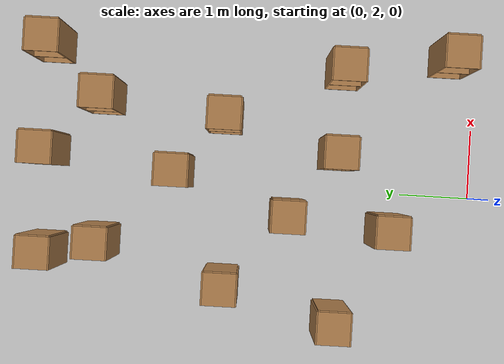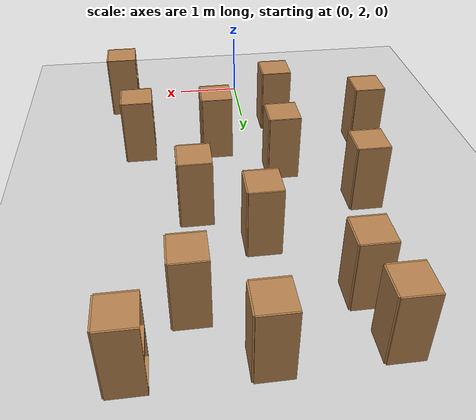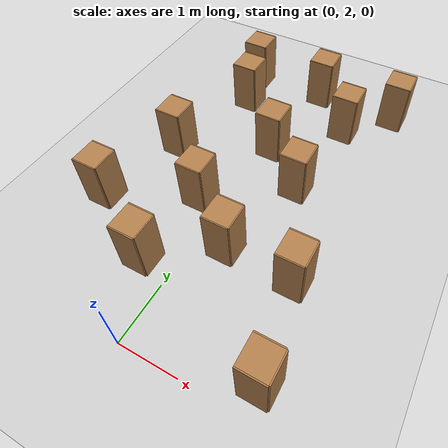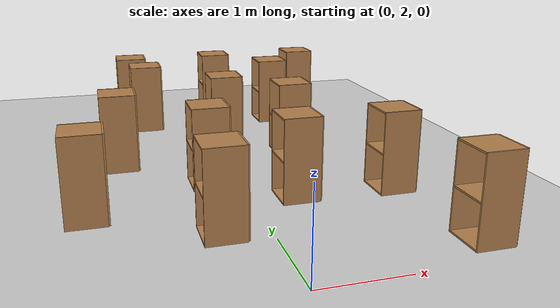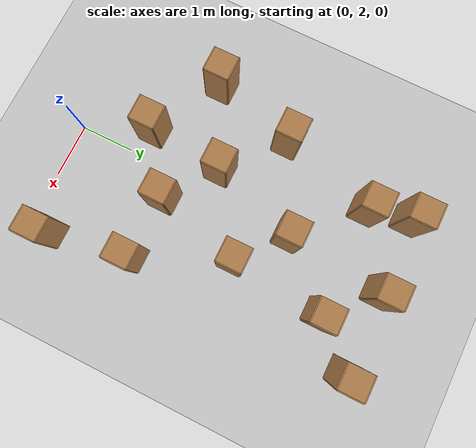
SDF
<sdf version="1.6">
 <world name="default">
  <model name="ground_plane">
   <static>1</static>
   <link name="link">
    <collision name="collision">
     <geometry><plane><normal>0 0 1</normal><size>100 100</size></plane></geometry>
     <surface><friction><ode><mu>100</mu><mu2>50</mu2></ode></friction></surface>
    </collision>
    <visual name="visual">
     <cast_shadows>0</cast_shadows>
     <geometry><plane><normal>0 0 1</normal><size>100 100</size></plane></geometry>
     <material>
      <script><uri>file://media/materials/scripts/gazebo.material</uri><name>Gazebo/Grey</name></script>
     </material>
    </visual>
   </link>
  </model>
  <model name="cabinet_39">
   <static>1</static>
   <link name="cabinet_bottom_plate">
    <inertial>
     <pose>0 0 -1 0 -0 0</pose>
     <inertia><ixx>2.05</ixx><ixy>0</ixy><ixz>0</ixz><iyy>2.05</iyy><iyz>0</iyz><izz>2.05</izz></inertia>
     <mass>25</mass>
    </inertial>
    <collision name="cabinet_bottom_plate_geom">
     <pose>0 0 0.01 0 -0 0</pose>
     <geometry><box><size>0.45 0.45 0.02</size></box></geometry>
    </collision>
    <visual name="cabinet_bottom_plate_geom_visual">
     <pose>0 0 0.01 0 -0 0</pose>
     <geometry><box><size>0.45 0.45 0.02</size></box></geometry>
     <material>
      <script><uri>file://media/materials/scripts/gazebo.material</uri><name>Gazebo/Wood</name></script>
     </material>
    </visual>
    <collision name="cabinet_bottom_plate_geom_cabinet_back_plate">
     <pose>0.235 0 0.51 0 -0 0</pose>
     <geometry><box><size>0.02 0.45 1.02</size></box></geometry>
    </collision>
    <visual name="cabinet_bottom_plate_geom_cabinet_back_plate_visual">
     <pose>0.235 0 0.51 0 -0 0</pose>
     <geometry><box><size>0.02 0.45 1.02</size></box></geometry>
     <material>
      <script><uri>file://media/materials/scripts/gazebo.material</uri><name>Gazebo/Wood</name></script>
     </material>
    </visual>
    <collision name="cabinet_bottom_plate_geom_cabinet_left_plate">
     <pose>0 0.235 0.51 0 -0 0</pose>
     <geometry><box><size>0.45 0.02 1.02</size></box></geometry>
    </collision>
    <visual name="cabinet_bottom_plate_geom_cabinet_left_plate_visual">
     <pose>0 0.235 0.51 0 -0 0</pose>
     <geometry><box><size>0.45 0.02 1.02</size></box></geometry>
     <material>
      <script><uri>file://media/materials/scripts/gazebo.material</uri><name>Gazebo/Wood</name></script>
     </material>
    </visual>
    <collision name="cabinet_bottom_plate_geom_cabinet_middle_plate">
     <pose>0 0 0.51 0 -0 0</pose>
     <geometry><box><size>0.45 0.45 0.02</size></box></geometry>
    </collision>
    <visual name="cabinet_bottom_plate_geom_cabinet_middle_plate_visual">
     <pose>0 0 0.51 0 -0 0</pose>
     <geometry><box><size>0.45 0.45 0.02</size></box></geometry>
     <material>
      <script><uri>file://media/materials/scripts/gazebo.material</uri><name>Gazebo/Wood</name></script>
     </material>
    </visual>
    <collision name="cabinet_bottom_plate_geom_cabinet_right_plate">
     <pose>0 -0.235 0.51 0 -0 0</pose>
     <geometry><box><size>0.45 0.02 1.02</size></box></geometry>
    </collision>
    <visual name="cabinet_bottom_plate_geom_cabinet_right_plate_visual">
     <pose>0 -0.235 0.51 0 -0 0</pose>
     <geometry><box><size>0.45 0.02 1.02</size></box></geometry>
     <material>
      <script><uri>file://media/materials/scripts/gazebo.material</uri><name>Gazebo/Wood</name></script>
     </material>
    </visual>
    <collision name="cabinet_bottom_plate_geom_cabinet_top_plate">
     <pose>0 0 1.01 0 -0 0</pose>
     <geometry><box><size>0.45 0.45 0.02</size></box></geometry>
    </collision>
    <visual name="cabinet_bottom_plate_geom_cabinet_top_plate_visual">
     <pose>0 0 1.01 0 -0 0</pose>
     <geometry><box><size>0.45 0.45 0.02</size></box></geometry>
     <material>
      <script><uri>file://media/materials/scripts/gazebo.material</uri><name>Gazebo/Wood</name></script>
     </material>
    </visual>
   </link>
   <pose>-1.04936 8.11468 0 0 -0 0</pose>
  </model>
  <model name="cabinet_40">
   <static>1</static>
   <link name="cabinet_bottom_plate">
    <inertial>
     <pose>0 0 -1 0 -0 0</pose>
     <inertia><ixx>2.05</ixx><ixy>0</ixy><ixz>0</ixz><iyy>2.05</iyy><iyz>0</iyz><izz>2.05</izz></inertia>
     <mass>25</mass>
    </inertial>
    <collision name="cabinet_bottom_plate_geom">
     <pose>0 0 0.01 0 -0 0</pose>
     <geometry><box><size>0.45 0.45 0.02</size></box></geometry>
    </collision>
    <visual name="cabinet_bottom_plate_geom_visual">
     <pose>0 0 0.01 0 -0 0</pose>
     <geometry><box><size>0.45 0.45 0.02</size></box></geometry>
     <material>
      <script><uri>file://media/materials/scripts/gazebo.material</uri><name>Gazebo/Wood</name></script>
     </material>
    </visual>
    <collision name="cabinet_bottom_plate_geom_cabinet_back_plate">
     <pose>0.235 0 0.51 0 -0 0</pose>
     <geometry><box><size>0.02 0.45 1.02</size></box></geometry>
    </collision>
    <visual name="cabinet_bottom_plate_geom_cabinet_back_plate_visual">
     <pose>0.235 0 0.51 0 -0 0</pose>
     <geometry><box><size>0.02 0.45 1.02</size></box></geometry>
     <material>
      <script><uri>file://media/materials/scripts/gazebo.material</uri><name>Gazebo/Wood</name></script>
     </material>
    </visual>
    <collision name="cabinet_bottom_plate_geom_cabinet_left_plate">
     <pose>0 0.235 0.51 0 -0 0</pose>
     <geometry><box><size>0.45 0.02 1.02</size></box></geometry>
    </collision>
    <visual name="cabinet_bottom_plate_geom_cabinet_left_plate_visual">
     <pose>0 0.235 0.51 0 -0 0</pose>
     <geometry><box><size>0.45 0.02 1.02</size></box></geometry>
     <material>
      <script><uri>file://media/materials/scripts/gazebo.material</uri><name>Gazebo/Wood</name></script>
     </material>
    </visual>
    <collision name="cabinet_bottom_plate_geom_cabinet_middle_plate">
     <pose>0 0 0.51 0 -0 0</pose>
     <geometry><box><size>0.45 0.45 0.02</size></box></geometry>
    </collision>
    <visual name="cabinet_bottom_plate_geom_cabinet_middle_plate_visual">
     <pose>0 0 0.51 0 -0 0</pose>
     <geometry><box><size>0.45 0.45 0.02</size></box></geometry>
     <material>
      <script><uri>file://media/materials/scripts/gazebo.material</uri><name>Gazebo/Wood</name></script>
     </material>
    </visual>
    <collision name="cabinet_bottom_plate_geom_cabinet_right_plate">
     <pose>0 -0.235 0.51 0 -0 0</pose>
     <geometry><box><size>0.45 0.02 1.02</size></box></geometry>
    </collision>
    <visual name="cabinet_bottom_plate_geom_cabinet_right_plate_visual">
     <pose>0 -0.235 0.51 0 -0 0</pose>
     <geometry><box><size>0.45 0.02 1.02</size></box></geometry>
     <material>
      <script><uri>file://media/materials/scripts/gazebo.material</uri><name>Gazebo/Wood</name></script>
     </material>
    </visual>
    <collision name="cabinet_bottom_plate_geom_cabinet_top_plate">
     <pose>0 0 1.01 0 -0 0</pose>
     <geometry><box><size>0.45 0.45 0.02</size></box></geometry>
    </collision>
    <visual name="cabinet_bottom_plate_geom_cabinet_top_plate_visual">
     <pose>0 0 1.01 0 -0 0</pose>
     <geometry><box><size>0.45 0.45 0.02</size></box></geometry>
     <material>
      <script><uri>file://media/materials/scripts/gazebo.material</uri><name>Gazebo/Wood</name></script>
     </material>
    </visual>
   </link>
   <pose>0.379703 8.15627 0 0 -0 0</pose>
  </model>
  <model name="cabinet_41">
   <static>1</static>
   <link name="cabinet_bottom_plate">
    <inertial>
     <pose>0 0 -1 0 -0 0</pose>
     <inertia><ixx>2.05</ixx><ixy>0</ixy><ixz>0</ixz><iyy>2.05</iyy><iyz>0</iyz><izz>2.05</izz></inertia>
     <mass>25</mass>
    </inertial>
    <collision name="cabinet_bottom_plate_geom">
     <pose>0 0 0.01 0 -0 0</pose>
     <geometry><box><size>0.45 0.45 0.02</size></box></geometry>
    </collision>
    <visual name="cabinet_bottom_plate_geom_visual">
     <pose>0 0 0.01 0 -0 0</pose>
     <geometry><box><size>0.45 0.45 0.02</size></box></geometry>
     <material>
      <script><uri>file://media/materials/scripts/gazebo.material</uri><name>Gazebo/Wood</name></script>
     </material>
    </visual>
    <collision name="cabinet_bottom_plate_geom_cabinet_back_plate">
     <pose>0.235 0 0.51 0 -0 0</pose>
     <geometry><box><size>0.02 0.45 1.02</size></box></geometry>
    </collision>
    <visual name="cabinet_bottom_plate_geom_cabinet_back_plate_visual">
     <pose>0.235 0 0.51 0 -0 0</pose>
     <geometry><box><size>0.02 0.45 1.02</size></box></geometry>
     <material>
      <script><uri>file://media/materials/scripts/gazebo.material</uri><name>Gazebo/Wood</name></script>
     </material>
    </visual>
    <collision name="cabinet_bottom_plate_geom_cabinet_left_plate">
     <pose>0 0.235 0.51 0 -0 0</pose>
     <geometry><box><size>0.45 0.02 1.02</size></box></geometry>
    </collision>
    <visual name="cabinet_bottom_plate_geom_cabinet_left_plate_visual">
     <pose>0 0.235 0.51 0 -0 0</pose>
     <geometry><box><size>0.45 0.02 1.02</size></box></geometry>
     <material>
      <script><uri>file://media/materials/scripts/gazebo.material</uri><name>Gazebo/Wood</name></script>
     </material>
    </visual>
    <collision name="cabinet_bottom_plate_geom_cabinet_middle_plate">
     <pose>0 0 0.51 0 -0 0</pose>
     <geometry><box><size>0.45 0.45 0.02</size></box></geometry>
    </collision>
    <visual name="cabinet_bottom_plate_geom_cabinet_middle_plate_visual">
     <pose>0 0 0.51 0 -0 0</pose>
     <geometry><box><size>0.45 0.45 0.02</size></box></geometry>
     <material>
      <script><uri>file://media/materials/scripts/gazebo.material</uri><name>Gazebo/Wood</name></script>
     </material>
    </visual>
    <collision name="cabinet_bottom_plate_geom_cabinet_right_plate">
     <pose>0 -0.235 0.51 0 -0 0</pose>
     <geometry><box><size>0.45 0.02 1.02</size></box></geometry>
    </collision>
    <visual name="cabinet_bottom_plate_geom_cabinet_right_plate_visual">
     <pose>0 -0.235 0.51 0 -0 0</pose>
     <geometry><box><size>0.45 0.02 1.02</size></box></geometry>
     <material>
      <script><uri>file://media/materials/scripts/gazebo.material</uri><name>Gazebo/Wood</name></script>
     </material>
    </visual>
    <collision name="cabinet_bottom_plate_geom_cabinet_top_plate">
     <pose>0 0 1.01 0 -0 0</pose>
     <geometry><box><size>0.45 0.45 0.02</size></box></geometry>
    </collision>
    <visual name="cabinet_bottom_plate_geom_cabinet_top_plate_visual">
     <pose>0 0 1.01 0 -0 0</pose>
     <geometry><box><size>0.45 0.45 0.02</size></box></geometry>
     <material>
      <script><uri>file://media/materials/scripts/gazebo.material</uri><name>Gazebo/Wood</name></script>
     </material>
    </visual>
   </link>
   <pose>1.89834 8.14689 0 0 -0 0</pose>
  </model>
  <model name="cabinet_51">
   <static>1</static>
   <link name="cabinet_bottom_plate">
    <inertial>
     <pose>0 0 -1 0 -0 0</pose>
     <inertia><ixx>2.05</ixx><ixy>0</ixy><ixz>0</ixz><iyy>2.05</iyy><iyz>0</iyz><izz>2.05</izz></inertia>
     <mass>25</mass>
    </inertial>
    <collision name="cabinet_bottom_plate_geom">
     <pose>0 0 0.01 0 -0 0</pose>
     <geometry><box><size>0.45 0.45 0.02</size></box></geometry>
    </collision>
    <visual name="cabinet_bottom_plate_geom_visual">
     <pose>0 0 0.01 0 -0 0</pose>
     <geometry><box><size>0.45 0.45 0.02</size></box></geometry>
     <material>
      <script><uri>file://media/materials/scripts/gazebo.material</uri><name>Gazebo/Wood</name></script>
     </material>
    </visual>
    <collision name="cabinet_bottom_plate_geom_cabinet_back_plate">
     <pose>0.235 0 0.51 0 -0 0</pose>
     <geometry><box><size>0.02 0.45 1.02</size></box></geometry>
    </collision>
    <visual name="cabinet_bottom_plate_geom_cabinet_back_plate_visual">
     <pose>0.235 0 0.51 0 -0 0</pose>
     <geometry><box><size>0.02 0.45 1.02</size></box></geometry>
     <material>
      <script><uri>file://media/materials/scripts/gazebo.material</uri><name>Gazebo/Wood</name></script>
     </material>
    </visual>
    <collision name="cabinet_bottom_plate_geom_cabinet_left_plate">
     <pose>0 0.235 0.51 0 -0 0</pose>
     <geometry><box><size>0.45 0.02 1.02</size></box></geometry>
    </collision>
    <visual name="cabinet_bottom_plate_geom_cabinet_left_plate_visual">
     <pose>0 0.235 0.51 0 -0 0</pose>
     <geometry><box><size>0.45 0.02 1.02</size></box></geometry>
     <material>
      <script><uri>file://media/materials/scripts/gazebo.material</uri><name>Gazebo/Wood</name></script>
     </material>
    </visual>
    <collision name="cabinet_bottom_plate_geom_cabinet_middle_plate">
     <pose>0 0 0.51 0 -0 0</pose>
     <geometry><box><size>0.45 0.45 0.02</size></box></geometry>
    </collision>
    <visual name="cabinet_bottom_plate_geom_cabinet_middle_plate_visual">
     <pose>0 0 0.51 0 -0 0</pose>
     <geometry><box><size>0.45 0.45 0.02</size></box></geometry>
     <material>
      <script><uri>file://media/materials/scripts/gazebo.material</uri><name>Gazebo/Wood</name></script>
     </material>
    </visual>
    <collision name="cabinet_bottom_plate_geom_cabinet_right_plate">
     <pose>0 -0.235 0.51 0 -0 0</pose>
     <geometry><box><size>0.45 0.02 1.02</size></box></geometry>
    </collision>
    <visual name="cabinet_bottom_plate_geom_cabinet_right_plate_visual">
     <pose>0 -0.235 0.51 0 -0 0</pose>
     <geometry><box><size>0.45 0.02 1.02</size></box></geometry>
     <material>
      <script><uri>file://media/materials/scripts/gazebo.material</uri><name>Gazebo/Wood</name></script>
     </material>
    </visual>
    <collision name="cabinet_bottom_plate_geom_cabinet_top_plate">
     <pose>0 0 1.01 0 -0 0</pose>
     <geometry><box><size>0.45 0.45 0.02</size></box></geometry>
    </collision>
    <visual name="cabinet_bottom_plate_geom_cabinet_top_plate_visual">
     <pose>0 0 1.01 0 -0 0</pose>
     <geometry><box><size>0.45 0.45 0.02</size></box></geometry>
     <material>
      <script><uri>file://media/materials/scripts/gazebo.material</uri><name>Gazebo/Wood</name></script>
     </material>
    </visual>
   </link>
   <pose>-0.880454 7.34516 0 0 -0 0</pose>
  </model>
  <model name="cabinet_52">
   <static>1</static>
   <link name="cabinet_bottom_plate">
    <inertial>
     <pose>0 0 -1 0 -0 0</pose>
     <inertia><ixx>2.05</ixx><ixy>0</ixy><ixz>0</ixz><iyy>2.05</iyy><iyz>0</iyz><izz>2.05</izz></inertia>
     <mass>25</mass>
    </inertial>
    <collision name="cabinet_bottom_plate_geom">
     <pose>0 0 0.01 0 -0 0</pose>
     <geometry><box><size>0.45 0.45 0.02</size></box></geometry>
    </collision>
    <visual name="cabinet_bottom_plate_geom_visual">
     <pose>0 0 0.01 0 -0 0</pose>
     <geometry><box><size>0.45 0.45 0.02</size></box></geometry>
     <material>
      <script><uri>file://media/materials/scripts/gazebo.material</uri><name>Gazebo/Wood</name></script>
     </material>
    </visual>
    <collision name="cabinet_bottom_plate_geom_cabinet_back_plate">
     <pose>0.235 0 0.51 0 -0 0</pose>
     <geometry><box><size>0.02 0.45 1.02</size></box></geometry>
    </collision>
    <visual name="cabinet_bottom_plate_geom_cabinet_back_plate_visual">
     <pose>0.235 0 0.51 0 -0 0</pose>
     <geometry><box><size>0.02 0.45 1.02</size></box></geometry>
     <material>
      <script><uri>file://media/materials/scripts/gazebo.material</uri><name>Gazebo/Wood</name></script>
     </material>
    </visual>
    <collision name="cabinet_bottom_plate_geom_cabinet_left_plate">
     <pose>0 0.235 0.51 0 -0 0</pose>
     <geometry><box><size>0.45 0.02 1.02</size></box></geometry>
    </collision>
    <visual name="cabinet_bottom_plate_geom_cabinet_left_plate_visual">
     <pose>0 0.235 0.51 0 -0 0</pose>
     <geometry><box><size>0.45 0.02 1.02</size></box></geometry>
     <material>
      <script><uri>file://media/materials/scripts/gazebo.material</uri><name>Gazebo/Wood</name></script>
     </material>
    </visual>
    <collision name="cabinet_bottom_plate_geom_cabinet_middle_plate">
     <pose>0 0 0.51 0 -0 0</pose>
     <geometry><box><size>0.45 0.45 0.02</size></box></geometry>
    </collision>
    <visual name="cabinet_bottom_plate_geom_cabinet_middle_plate_visual">
     <pose>0 0 0.51 0 -0 0</pose>
     <geometry><box><size>0.45 0.45 0.02</size></box></geometry>
     <material>
      <script><uri>file://media/materials/scripts/gazebo.material</uri><name>Gazebo/Wood</name></script>
     </material>
    </visual>
    <collision name="cabinet_bottom_plate_geom_cabinet_right_plate">
     <pose>0 -0.235 0.51 0 -0 0</pose>
     <geometry><box><size>0.45 0.02 1.02</size></box></geometry>
    </collision>
    <visual name="cabinet_bottom_plate_geom_cabinet_right_plate_visual">
     <pose>0 -0.235 0.51 0 -0 0</pose>
     <geometry><box><size>0.45 0.02 1.02</size></box></geometry>
     <material>
      <script><uri>file://media/materials/scripts/gazebo.material</uri><name>Gazebo/Wood</name></script>
     </material>
    </visual>
    <collision name="cabinet_bottom_plate_geom_cabinet_top_plate">
     <pose>0 0 1.01 0 -0 0</pose>
     <geometry><box><size>0.45 0.45 0.02</size></box></geometry>
    </collision>
    <visual name="cabinet_bottom_plate_geom_cabinet_top_plate_visual">
     <pose>0 0 1.01 0 -0 0</pose>
     <geometry><box><size>0.45 0.45 0.02</size></box></geometry>
     <material>
      <script><uri>file://media/materials/scripts/gazebo.material</uri><name>Gazebo/Wood</name></script>
     </material>
    </visual>
   </link>
   <pose>0.172309 6.30428 0 0 -0 0</pose>
  </model>
  <model name="cabinet_53">
   <static>1</static>
   <link name="cabinet_bottom_plate">
    <inertial>
     <pose>0 0 -1 0 -0 0</pose>
     <inertia><ixx>2.05</ixx><ixy>0</ixy><ixz>0</ixz><iyy>2.05</iyy><iyz>0</iyz><izz>2.05</izz></inertia>
     <mass>25</mass>
    </inertial>
    <collision name="cabinet_bottom_plate_geom">
     <pose>0 0 0.01 0 -0 0</pose>
     <geometry><box><size>0.45 0.45 0.02</size></box></geometry>
    </collision>
    <visual name="cabinet_bottom_plate_geom_visual">
     <pose>0 0 0.01 0 -0 0</pose>
     <geometry><box><size>0.45 0.45 0.02</size></box></geometry>
     <material>
      <script><uri>file://media/materials/scripts/gazebo.material</uri><name>Gazebo/Wood</name></script>
     </material>
    </visual>
    <collision name="cabinet_bottom_plate_geom_cabinet_back_plate">
     <pose>0.235 0 0.51 0 -0 0</pose>
     <geometry><box><size>0.02 0.45 1.02</size></box></geometry>
    </collision>
    <visual name="cabinet_bottom_plate_geom_cabinet_back_plate_visual">
     <pose>0.235 0 0.51 0 -0 0</pose>
     <geometry><box><size>0.02 0.45 1.02</size></box></geometry>
     <material>
      <script><uri>file://media/materials/scripts/gazebo.material</uri><name>Gazebo/Wood</name></script>
     </material>
    </visual>
    <collision name="cabinet_bottom_plate_geom_cabinet_left_plate">
     <pose>0 0.235 0.51 0 -0 0</pose>
     <geometry><box><size>0.45 0.02 1.02</size></box></geometry>
    </collision>
    <visual name="cabinet_bottom_plate_geom_cabinet_left_plate_visual">
     <pose>0 0.235 0.51 0 -0 0</pose>
     <geometry><box><size>0.45 0.02 1.02</size></box></geometry>
     <material>
      <script><uri>file://media/materials/scripts/gazebo.material</uri><name>Gazebo/Wood</name></script>
     </material>
    </visual>
    <collision name="cabinet_bottom_plate_geom_cabinet_middle_plate">
     <pose>0 0 0.51 0 -0 0</pose>
     <geometry><box><size>0.45 0.45 0.02</size></box></geometry>
    </collision>
    <visual name="cabinet_bottom_plate_geom_cabinet_middle_plate_visual">
     <pose>0 0 0.51 0 -0 0</pose>
     <geometry><box><size>0.45 0.45 0.02</size></box></geometry>
     <material>
      <script><uri>file://media/materials/scripts/gazebo.material</uri><name>Gazebo/Wood</name></script>
     </material>
    </visual>
    <collision name="cabinet_bottom_plate_geom_cabinet_right_plate">
     <pose>0 -0.235 0.51 0 -0 0</pose>
     <geometry><box><size>0.45 0.02 1.02</size></box></geometry>
    </collision>
    <visual name="cabinet_bottom_plate_geom_cabinet_right_plate_visual">
     <pose>0 -0.235 0.51 0 -0 0</pose>
     <geometry><box><size>0.45 0.02 1.02</size></box></geometry>
     <material>
      <script><uri>file://media/materials/scripts/gazebo.material</uri><name>Gazebo/Wood</name></script>
     </material>
    </visual>
    <collision name="cabinet_bottom_plate_geom_cabinet_top_plate">
     <pose>0 0 1.01 0 -0 0</pose>
     <geometry><box><size>0.45 0.45 0.02</size></box></geometry>
    </collision>
    <visual name="cabinet_bottom_plate_geom_cabinet_top_plate_visual">
     <pose>0 0 1.01 0 -0 0</pose>
     <geometry><box><size>0.45 0.45 0.02</size></box></geometry>
     <material>
      <script><uri>file://media/materials/scripts/gazebo.material</uri><name>Gazebo/Wood</name></script>
     </material>
    </visual>
   </link>
   <pose>1.17437 7.36677 0 0 -0 0</pose>
  </model>
  <model name="cabinet_64">
   <static>1</static>
   <link name="cabinet_bottom_plate">
    <inertial>
     <pose>0 0 -1 0 -0 0</pose>
     <inertia><ixx>2.05</ixx><ixy>0</ixy><ixz>0</ixz><iyy>2.05</iyy><iyz>0</iyz><izz>2.05</izz></inertia>
     <mass>25</mass>
    </inertial>
    <collision name="cabinet_bottom_plate_geom">
     <pose>0 0 0.01 0 -0 0</pose>
     <geometry><box><size>0.45 0.45 0.02</size></box></geometry>
    </collision>
    <visual name="cabinet_bottom_plate_geom_visual">
     <pose>0 0 0.01 0 -0 0</pose>
     <geometry><box><size>0.45 0.45 0.02</size></box></geometry>
     <material>
      <script><uri>file://media/materials/scripts/gazebo.material</uri><name>Gazebo/Wood</name></script>
     </material>
    </visual>
    <collision name="cabinet_bottom_plate_geom_cabinet_back_plate">
     <pose>0.235 0 0.51 0 -0 0</pose>
     <geometry><box><size>0.02 0.45 1.02</size></box></geometry>
    </collision>
    <visual name="cabinet_bottom_plate_geom_cabinet_back_plate_visual">
     <pose>0.235 0 0.51 0 -0 0</pose>
     <geometry><box><size>0.02 0.45 1.02</size></box></geometry>
     <material>
      <script><uri>file://media/materials/scripts/gazebo.material</uri><name>Gazebo/Wood</name></script>
     </material>
    </visual>
    <collision name="cabinet_bottom_plate_geom_cabinet_left_plate">
     <pose>0 0.235 0.51 0 -0 0</pose>
     <geometry><box><size>0.45 0.02 1.02</size></box></geometry>
    </collision>
    <visual name="cabinet_bottom_plate_geom_cabinet_left_plate_visual">
     <pose>0 0.235 0.51 0 -0 0</pose>
     <geometry><box><size>0.45 0.02 1.02</size></box></geometry>
     <material>
      <script><uri>file://media/materials/scripts/gazebo.material</uri><name>Gazebo/Wood</name></script>
     </material>
    </visual>
    <collision name="cabinet_bottom_plate_geom_cabinet_middle_plate">
     <pose>0 0 0.51 0 -0 0</pose>
     <geometry><box><size>0.45 0.45 0.02</size></box></geometry>
    </collision>
    <visual name="cabinet_bottom_plate_geom_cabinet_middle_plate_visual">
     <pose>0 0 0.51 0 -0 0</pose>
     <geometry><box><size>0.45 0.45 0.02</size></box></geometry>
     <material>
      <script><uri>file://media/materials/scripts/gazebo.material</uri><name>Gazebo/Wood</name></script>
     </material>
    </visual>
    <collision name="cabinet_bottom_plate_geom_cabinet_right_plate">
     <pose>0 -0.235 0.51 0 -0 0</pose>
     <geometry><box><size>0.45 0.02 1.02</size></box></geometry>
    </collision>
    <visual name="cabinet_bottom_plate_geom_cabinet_right_plate_visual">
     <pose>0 -0.235 0.51 0 -0 0</pose>
     <geometry><box><size>0.45 0.02 1.02</size></box></geometry>
     <material>
      <script><uri>file://media/materials/scripts/gazebo.material</uri><name>Gazebo/Wood</name></script>
     </material>
    </visual>
    <collision name="cabinet_bottom_plate_geom_cabinet_top_plate">
     <pose>0 0 1.01 0 -0 0</pose>
     <geometry><box><size>0.45 0.45 0.02</size></box></geometry>
    </collision>
    <visual name="cabinet_bottom_plate_geom_cabinet_top_plate_visual">
     <pose>0 0 1.01 0 -0 0</pose>
     <geometry><box><size>0.45 0.45 0.02</size></box></geometry>
     <material>
      <script><uri>file://media/materials/scripts/gazebo.material</uri><name>Gazebo/Wood</name></script>
     </material>
    </visual>
   </link>
   <pose>-1.4062 5.56121 0 0 -0 0</pose>
  </model>
  <model name="cabinet_65">
   <static>1</static>
   <link name="cabinet_bottom_plate">
    <inertial>
     <pose>0 0 -1 0 -0 0</pose>
     <inertia><ixx>2.05</ixx><ixy>0</ixy><ixz>0</ixz><iyy>2.05</iyy><iyz>0</iyz><izz>2.05</izz></inertia>
     <mass>25</mass>
    </inertial>
    <collision name="cabinet_bottom_plate_geom">
     <pose>0 0 0.01 0 -0 0</pose>
     <geometry><box><size>0.45 0.45 0.02</size></box></geometry>
    </collision>
    <visual name="cabinet_bottom_plate_geom_visual">
     <pose>0 0 0.01 0 -0 0</pose>
     <geometry><box><size>0.45 0.45 0.02</size></box></geometry>
     <material>
      <script><uri>file://media/materials/scripts/gazebo.material</uri><name>Gazebo/Wood</name></script>
     </material>
    </visual>
    <collision name="cabinet_bottom_plate_geom_cabinet_back_plate">
     <pose>0.235 0 0.51 0 -0 0</pose>
     <geometry><box><size>0.02 0.45 1.02</size></box></geometry>
    </collision>
    <visual name="cabinet_bottom_plate_geom_cabinet_back_plate_visual">
     <pose>0.235 0 0.51 0 -0 0</pose>
     <geometry><box><size>0.02 0.45 1.02</size></box></geometry>
     <material>
      <script><uri>file://media/materials/scripts/gazebo.material</uri><name>Gazebo/Wood</name></script>
     </material>
    </visual>
    <collision name="cabinet_bottom_plate_geom_cabinet_left_plate">
     <pose>0 0.235 0.51 0 -0 0</pose>
     <geometry><box><size>0.45 0.02 1.02</size></box></geometry>
    </collision>
    <visual name="cabinet_bottom_plate_geom_cabinet_left_plate_visual">
     <pose>0 0.235 0.51 0 -0 0</pose>
     <geometry><box><size>0.45 0.02 1.02</size></box></geometry>
     <material>
      <script><uri>file://media/materials/scripts/gazebo.material</uri><name>Gazebo/Wood</name></script>
     </material>
    </visual>
    <collision name="cabinet_bottom_plate_geom_cabinet_middle_plate">
     <pose>0 0 0.51 0 -0 0</pose>
     <geometry><box><size>0.45 0.45 0.02</size></box></geometry>
    </collision>
    <visual name="cabinet_bottom_plate_geom_cabinet_middle_plate_visual">
     <pose>0 0 0.51 0 -0 0</pose>
     <geometry><box><size>0.45 0.45 0.02</size></box></geometry>
     <material>
      <script><uri>file://media/materials/scripts/gazebo.material</uri><name>Gazebo/Wood</name></script>
     </material>
    </visual>
    <collision name="cabinet_bottom_plate_geom_cabinet_right_plate">
     <pose>0 -0.235 0.51 0 -0 0</pose>
     <geometry><box><size>0.45 0.02 1.02</size></box></geometry>
    </collision>
    <visual name="cabinet_bottom_plate_geom_cabinet_right_plate_visual">
     <pose>0 -0.235 0.51 0 -0 0</pose>
     <geometry><box><size>0.45 0.02 1.02</size></box></geometry>
     <material>
      <script><uri>file://media/materials/scripts/gazebo.material</uri><name>Gazebo/Wood</name></script>
     </material>
    </visual>
    <collision name="cabinet_bottom_plate_geom_cabinet_top_plate">
     <pose>0 0 1.01 0 -0 0</pose>
     <geometry><box><size>0.45 0.45 0.02</size></box></geometry>
    </collision>
    <visual name="cabinet_bottom_plate_geom_cabinet_top_plate_visual">
     <pose>0 0 1.01 0 -0 0</pose>
     <geometry><box><size>0.45 0.45 0.02</size></box></geometry>
     <material>
      <script><uri>file://media/materials/scripts/gazebo.material</uri><name>Gazebo/Wood</name></script>
     </material>
    </visual>
   </link>
   <pose>-0.378745 4.67645 0 0 -0 0</pose>
  </model>
  <model name="cabinet_66">
   <static>1</static>
   <link name="cabinet_bottom_plate">
    <inertial>
     <pose>0 0 -1 0 -0 0</pose>
     <inertia><ixx>2.05</ixx><ixy>0</ixy><ixz>0</ixz><iyy>2.05</iyy><iyz>0</iyz><izz>2.05</izz></inertia>
     <mass>25</mass>
    </inertial>
    <collision name="cabinet_bottom_plate_geom">
     <pose>0 0 0.01 0 -0 0</pose>
     <geometry><box><size>0.45 0.45 0.02</size></box></geometry>
    </collision>
    <visual name="cabinet_bottom_plate_geom_visual">
     <pose>0 0 0.01 0 -0 0</pose>
     <geometry><box><size>0.45 0.45 0.02</size></box></geometry>
     <material>
      <script><uri>file://media/materials/scripts/gazebo.material</uri><name>Gazebo/Wood</name></script>
     </material>
    </visual>
    <collision name="cabinet_bottom_plate_geom_cabinet_back_plate">
     <pose>0.235 0 0.51 0 -0 0</pose>
     <geometry><box><size>0.02 0.45 1.02</size></box></geometry>
    </collision>
    <visual name="cabinet_bottom_plate_geom_cabinet_back_plate_visual">
     <pose>0.235 0 0.51 0 -0 0</pose>
     <geometry><box><size>0.02 0.45 1.02</size></box></geometry>
     <material>
      <script><uri>file://media/materials/scripts/gazebo.material</uri><name>Gazebo/Wood</name></script>
     </material>
    </visual>
    <collision name="cabinet_bottom_plate_geom_cabinet_left_plate">
     <pose>0 0.235 0.51 0 -0 0</pose>
     <geometry><box><size>0.45 0.02 1.02</size></box></geometry>
    </collision>
    <visual name="cabinet_bottom_plate_geom_cabinet_left_plate_visual">
     <pose>0 0.235 0.51 0 -0 0</pose>
     <geometry><box><size>0.45 0.02 1.02</size></box></geometry>
     <material>
      <script><uri>file://media/materials/scripts/gazebo.material</uri><name>Gazebo/Wood</name></script>
     </material>
    </visual>
    <collision name="cabinet_bottom_plate_geom_cabinet_middle_plate">
     <pose>0 0 0.51 0 -0 0</pose>
     <geometry><box><size>0.45 0.45 0.02</size></box></geometry>
    </collision>
    <visual name="cabinet_bottom_plate_geom_cabinet_middle_plate_visual">
     <pose>0 0 0.51 0 -0 0</pose>
     <geometry><box><size>0.45 0.45 0.02</size></box></geometry>
     <material>
      <script><uri>file://media/materials/scripts/gazebo.material</uri><name>Gazebo/Wood</name></script>
     </material>
    </visual>
    <collision name="cabinet_bottom_plate_geom_cabinet_right_plate">
     <pose>0 -0.235 0.51 0 -0 0</pose>
     <geometry><box><size>0.45 0.02 1.02</size></box></geometry>
    </collision>
    <visual name="cabinet_bottom_plate_geom_cabinet_right_plate_visual">
     <pose>0 -0.235 0.51 0 -0 0</pose>
     <geometry><box><size>0.45 0.02 1.02</size></box></geometry>
     <material>
      <script><uri>file://media/materials/scripts/gazebo.material</uri><name>Gazebo/Wood</name></script>
     </material>
    </visual>
    <collision name="cabinet_bottom_plate_geom_cabinet_top_plate">
     <pose>0 0 1.01 0 -0 0</pose>
     <geometry><box><size>0.45 0.45 0.02</size></box></geometry>
    </collision>
    <visual name="cabinet_bottom_plate_geom_cabinet_top_plate_visual">
     <pose>0 0 1.01 0 -0 0</pose>
     <geometry><box><size>0.45 0.45 0.02</size></box></geometry>
     <material>
      <script><uri>file://media/materials/scripts/gazebo.material</uri><name>Gazebo/Wood</name></script>
     </material>
    </visual>
   </link>
   <pose>0.981342 5.6202 0 0 -0 0</pose>
  </model>
  <model name="cabinet_76">
   <static>1</static>
   <link name="cabinet_bottom_plate">
    <inertial>
     <pose>0 0 -1 0 -0 0</pose>
     <inertia><ixx>2.05</ixx><ixy>0</ixy><ixz>0</ixz><iyy>2.05</iyy><iyz>0</iyz><izz>2.05</izz></inertia>
     <mass>25</mass>
    </inertial>
    <collision name="cabinet_bottom_plate_geom">
     <pose>0 0 0.01 0 -0 0</pose>
     <geometry><box><size>0.45 0.45 0.02</size></box></geometry>
    </collision>
    <visual name="cabinet_bottom_plate_geom_visual">
     <pose>0 0 0.01 0 -0 0</pose>
     <geometry><box><size>0.45 0.45 0.02</size></box></geometry>
     <material>
      <script><uri>file://media/materials/scripts/gazebo.material</uri><name>Gazebo/Wood</name></script>
     </material>
    </visual>
    <collision name="cabinet_bottom_plate_geom_cabinet_back_plate">
     <pose>0.235 0 0.51 0 -0 0</pose>
     <geometry><box><size>0.02 0.45 1.02</size></box></geometry>
    </collision>
    <visual name="cabinet_bottom_plate_geom_cabinet_back_plate_visual">
     <pose>0.235 0 0.51 0 -0 0</pose>
     <geometry><box><size>0.02 0.45 1.02</size></box></geometry>
     <material>
      <script><uri>file://media/materials/scripts/gazebo.material</uri><name>Gazebo/Wood</name></script>
     </material>
    </visual>
    <collision name="cabinet_bottom_plate_geom_cabinet_left_plate">
     <pose>0 0.235 0.51 0 -0 0</pose>
     <geometry><box><size>0.45 0.02 1.02</size></box></geometry>
    </collision>
    <visual name="cabinet_bottom_plate_geom_cabinet_left_plate_visual">
     <pose>0 0.235 0.51 0 -0 0</pose>
     <geometry><box><size>0.45 0.02 1.02</size></box></geometry>
     <material>
      <script><uri>file://media/materials/scripts/gazebo.material</uri><name>Gazebo/Wood</name></script>
     </material>
    </visual>
    <collision name="cabinet_bottom_plate_geom_cabinet_middle_plate">
     <pose>0 0 0.51 0 -0 0</pose>
     <geometry><box><size>0.45 0.45 0.02</size></box></geometry>
    </collision>
    <visual name="cabinet_bottom_plate_geom_cabinet_middle_plate_visual">
     <pose>0 0 0.51 0 -0 0</pose>
     <geometry><box><size>0.45 0.45 0.02</size></box></geometry>
     <material>
      <script><uri>file://media/materials/scripts/gazebo.material</uri><name>Gazebo/Wood</name></script>
     </material>
    </visual>
    <collision name="cabinet_bottom_plate_geom_cabinet_right_plate">
     <pose>0 -0.235 0.51 0 -0 0</pose>
     <geometry><box><size>0.45 0.02 1.02</size></box></geometry>
    </collision>
    <visual name="cabinet_bottom_plate_geom_cabinet_right_plate_visual">
     <pose>0 -0.235 0.51 0 -0 0</pose>
     <geometry><box><size>0.45 0.02 1.02</size></box></geometry>
     <material>
      <script><uri>file://media/materials/scripts/gazebo.material</uri><name>Gazebo/Wood</name></script>
     </material>
    </visual>
    <collision name="cabinet_bottom_plate_geom_cabinet_top_plate">
     <pose>0 0 1.01 0 -0 0</pose>
     <geometry><box><size>0.45 0.45 0.02</size></box></geometry>
    </collision>
    <visual name="cabinet_bottom_plate_geom_cabinet_top_plate_visual">
     <pose>0 0 1.01 0 -0 0</pose>
     <geometry><box><size>0.45 0.45 0.02</size></box></geometry>
     <material>
      <script><uri>file://media/materials/scripts/gazebo.material</uri><name>Gazebo/Wood</name></script>
     </material>
    </visual>
   </link>
   <pose>-1.84874 3.98207 0 0 -0 0</pose>
  </model>
  <model name="cabinet_77">
   <static>1</static>
   <link name="cabinet_bottom_plate">
    <inertial>
     <pose>0 0 -1 0 -0 0</pose>
     <inertia><ixx>2.05</ixx><ixy>0</ixy><ixz>0</ixz><iyy>2.05</iyy><iyz>0</iyz><izz>2.05</izz></inertia>
     <mass>25</mass>
    </inertial>
    <collision name="cabinet_bottom_plate_geom">
     <pose>0 0 0.01 0 -0 0</pose>
     <geometry><box><size>0.45 0.45 0.02</size></box></geometry>
    </collision>
    <visual name="cabinet_bottom_plate_geom_visual">
     <pose>0 0 0.01 0 -0 0</pose>
     <geometry><box><size>0.45 0.45 0.02</size></box></geometry>
     <material>
      <script><uri>file://media/materials/scripts/gazebo.material</uri><name>Gazebo/Wood</name></script>
     </material>
    </visual>
    <collision name="cabinet_bottom_plate_geom_cabinet_back_plate">
     <pose>0.235 0 0.51 0 -0 0</pose>
     <geometry><box><size>0.02 0.45 1.02</size></box></geometry>
    </collision>
    <visual name="cabinet_bottom_plate_geom_cabinet_back_plate_visual">
     <pose>0.235 0 0.51 0 -0 0</pose>
     <geometry><box><size>0.02 0.45 1.02</size></box></geometry>
     <material>
      <script><uri>file://media/materials/scripts/gazebo.material</uri><name>Gazebo/Wood</name></script>
     </material>
    </visual>
    <collision name="cabinet_bottom_plate_geom_cabinet_left_plate">
     <pose>0 0.235 0.51 0 -0 0</pose>
     <geometry><box><size>0.45 0.02 1.02</size></box></geometry>
    </collision>
    <visual name="cabinet_bottom_plate_geom_cabinet_left_plate_visual">
     <pose>0 0.235 0.51 0 -0 0</pose>
     <geometry><box><size>0.45 0.02 1.02</size></box></geometry>
     <material>
      <script><uri>file://media/materials/scripts/gazebo.material</uri><name>Gazebo/Wood</name></script>
     </material>
    </visual>
    <collision name="cabinet_bottom_plate_geom_cabinet_middle_plate">
     <pose>0 0 0.51 0 -0 0</pose>
     <geometry><box><size>0.45 0.45 0.02</size></box></geometry>
    </collision>
    <visual name="cabinet_bottom_plate_geom_cabinet_middle_plate_visual">
     <pose>0 0 0.51 0 -0 0</pose>
     <geometry><box><size>0.45 0.45 0.02</size></box></geometry>
     <material>
      <script><uri>file://media/materials/scripts/gazebo.material</uri><name>Gazebo/Wood</name></script>
     </material>
    </visual>
    <collision name="cabinet_bottom_plate_geom_cabinet_right_plate">
     <pose>0 -0.235 0.51 0 -0 0</pose>
     <geometry><box><size>0.45 0.02 1.02</size></box></geometry>
    </collision>
    <visual name="cabinet_bottom_plate_geom_cabinet_right_plate_visual">
     <pose>0 -0.235 0.51 0 -0 0</pose>
     <geometry><box><size>0.45 0.02 1.02</size></box></geometry>
     <material>
      <script><uri>file://media/materials/scripts/gazebo.material</uri><name>Gazebo/Wood</name></script>
     </material>
    </visual>
    <collision name="cabinet_bottom_plate_geom_cabinet_top_plate">
     <pose>0 0 1.01 0 -0 0</pose>
     <geometry><box><size>0.45 0.45 0.02</size></box></geometry>
    </collision>
    <visual name="cabinet_bottom_plate_geom_cabinet_top_plate_visual">
     <pose>0 0 1.01 0 -0 0</pose>
     <geometry><box><size>0.45 0.45 0.02</size></box></geometry>
     <material>
      <script><uri>file://media/materials/scripts/gazebo.material</uri><name>Gazebo/Wood</name></script>
     </material>
    </visual>
   </link>
   <pose>-0.515469 3.24899 0 0 -0 0</pose>
  </model>
  <model name="cabinet_78">
   <static>1</static>
   <link name="cabinet_bottom_plate">
    <inertial>
     <pose>0 0 -1 0 -0 0</pose>
     <inertia><ixx>2.05</ixx><ixy>0</ixy><ixz>0</ixz><iyy>2.05</iyy><iyz>0</iyz><izz>2.05</izz></inertia>
     <mass>25</mass>
    </inertial>
    <collision name="cabinet_bottom_plate_geom">
     <pose>0 0 0.01 0 -0 0</pose>
     <geometry><box><size>0.45 0.45 0.02</size></box></geometry>
    </collision>
    <visual name="cabinet_bottom_plate_geom_visual">
     <pose>0 0 0.01 0 -0 0</pose>
     <geometry><box><size>0.45 0.45 0.02</size></box></geometry>
     <material>
      <script><uri>file://media/materials/scripts/gazebo.material</uri><name>Gazebo/Wood</name></script>
     </material>
    </visual>
    <collision name="cabinet_bottom_plate_geom_cabinet_back_plate">
     <pose>0.235 0 0.51 0 -0 0</pose>
     <geometry><box><size>0.02 0.45 1.02</size></box></geometry>
    </collision>
    <visual name="cabinet_bottom_plate_geom_cabinet_back_plate_visual">
     <pose>0.235 0 0.51 0 -0 0</pose>
     <geometry><box><size>0.02 0.45 1.02</size></box></geometry>
     <material>
      <script><uri>file://media/materials/scripts/gazebo.material</uri><name>Gazebo/Wood</name></script>
     </material>
    </visual>
    <collision name="cabinet_bottom_plate_geom_cabinet_left_plate">
     <pose>0 0.235 0.51 0 -0 0</pose>
     <geometry><box><size>0.45 0.02 1.02</size></box></geometry>
    </collision>
    <visual name="cabinet_bottom_plate_geom_cabinet_left_plate_visual">
     <pose>0 0.235 0.51 0 -0 0</pose>
     <geometry><box><size>0.45 0.02 1.02</size></box></geometry>
     <material>
      <script><uri>file://media/materials/scripts/gazebo.material</uri><name>Gazebo/Wood</name></script>
     </material>
    </visual>
    <collision name="cabinet_bottom_plate_geom_cabinet_middle_plate">
     <pose>0 0 0.51 0 -0 0</pose>
     <geometry><box><size>0.45 0.45 0.02</size></box></geometry>
    </collision>
    <visual name="cabinet_bottom_plate_geom_cabinet_middle_plate_visual">
     <pose>0 0 0.51 0 -0 0</pose>
     <geometry><box><size>0.45 0.45 0.02</size></box></geometry>
     <material>
      <script><uri>file://media/materials/scripts/gazebo.material</uri><name>Gazebo/Wood</name></script>
     </material>
    </visual>
    <collision name="cabinet_bottom_plate_geom_cabinet_right_plate">
     <pose>0 -0.235 0.51 0 -0 0</pose>
     <geometry><box><size>0.45 0.02 1.02</size></box></geometry>
    </collision>
    <visual name="cabinet_bottom_plate_geom_cabinet_right_plate_visual">
     <pose>0 -0.235 0.51 0 -0 0</pose>
     <geometry><box><size>0.45 0.02 1.02</size></box></geometry>
     <material>
      <script><uri>file://media/materials/scripts/gazebo.material</uri><name>Gazebo/Wood</name></script>
     </material>
    </visual>
    <collision name="cabinet_bottom_plate_geom_cabinet_top_plate">
     <pose>0 0 1.01 0 -0 0</pose>
     <geometry><box><size>0.45 0.45 0.02</size></box></geometry>
    </collision>
    <visual name="cabinet_bottom_plate_geom_cabinet_top_plate_visual">
     <pose>0 0 1.01 0 -0 0</pose>
     <geometry><box><size>0.45 0.45 0.02</size></box></geometry>
     <material>
      <script><uri>file://media/materials/scripts/gazebo.material</uri><name>Gazebo/Wood</name></script>
     </material>
    </visual>
   </link>
   <pose>0.533804 4.00016 0 0 -0 0</pose>
  </model>
  <model name="cabinet_79">
   <static>1</static>
   <link name="cabinet_bottom_plate">
    <inertial>
     <pose>0 0 -1 0 -0 0</pose>
     <inertia><ixx>2.05</ixx><ixy>0</ixy><ixz>0</ixz><iyy>2.05</iyy><iyz>0</iyz><izz>2.05</izz></inertia>
     <mass>25</mass>
    </inertial>
    <collision name="cabinet_bottom_plate_geom">
     <pose>0 0 0.01 0 -0 0</pose>
     <geometry><box><size>0.45 0.45 0.02</size></box></geometry>
    </collision>
    <visual name="cabinet_bottom_plate_geom_visual">
     <pose>0 0 0.01 0 -0 0</pose>
     <geometry><box><size>0.45 0.45 0.02</size></box></geometry>
     <material>
      <script><uri>file://media/materials/scripts/gazebo.material</uri><name>Gazebo/Wood</name></script>
     </material>
    </visual>
    <collision name="cabinet_bottom_plate_geom_cabinet_back_plate">
     <pose>0.235 0 0.51 0 -0 0</pose>
     <geometry><box><size>0.02 0.45 1.02</size></box></geometry>
    </collision>
    <visual name="cabinet_bottom_plate_geom_cabinet_back_plate_visual">
     <pose>0.235 0 0.51 0 -0 0</pose>
     <geometry><box><size>0.02 0.45 1.02</size></box></geometry>
     <material>
      <script><uri>file://media/materials/scripts/gazebo.material</uri><name>Gazebo/Wood</name></script>
     </material>
    </visual>
    <collision name="cabinet_bottom_plate_geom_cabinet_left_plate">
     <pose>0 0.235 0.51 0 -0 0</pose>
     <geometry><box><size>0.45 0.02 1.02</size></box></geometry>
    </collision>
    <visual name="cabinet_bottom_plate_geom_cabinet_left_plate_visual">
     <pose>0 0.235 0.51 0 -0 0</pose>
     <geometry><box><size>0.45 0.02 1.02</size></box></geometry>
     <material>
      <script><uri>file://media/materials/scripts/gazebo.material</uri><name>Gazebo/Wood</name></script>
     </material>
    </visual>
    <collision name="cabinet_bottom_plate_geom_cabinet_middle_plate">
     <pose>0 0 0.51 0 -0 0</pose>
     <geometry><box><size>0.45 0.45 0.02</size></box></geometry>
    </collision>
    <visual name="cabinet_bottom_plate_geom_cabinet_middle_plate_visual">
     <pose>0 0 0.51 0 -0 0</pose>
     <geometry><box><size>0.45 0.45 0.02</size></box></geometry>
     <material>
      <script><uri>file://media/materials/scripts/gazebo.material</uri><name>Gazebo/Wood</name></script>
     </material>
    </visual>
    <collision name="cabinet_bottom_plate_geom_cabinet_right_plate">
     <pose>0 -0.235 0.51 0 -0 0</pose>
     <geometry><box><size>0.45 0.02 1.02</size></box></geometry>
    </collision>
    <visual name="cabinet_bottom_plate_geom_cabinet_right_plate_visual">
     <pose>0 -0.235 0.51 0 -0 0</pose>
     <geometry><box><size>0.45 0.02 1.02</size></box></geometry>
     <material>
      <script><uri>file://media/materials/scripts/gazebo.material</uri><name>Gazebo/Wood</name></script>
     </material>
    </visual>
    <collision name="cabinet_bottom_plate_geom_cabinet_top_plate">
     <pose>0 0 1.01 0 -0 0</pose>
     <geometry><box><size>0.45 0.45 0.02</size></box></geometry>
    </collision>
    <visual name="cabinet_bottom_plate_geom_cabinet_top_plate_visual">
     <pose>0 0 1.01 0 -0 0</pose>
     <geometry><box><size>0.45 0.45 0.02</size></box></geometry>
     <material>
      <script><uri>file://media/materials/scripts/gazebo.material</uri><name>Gazebo/Wood</name></script>
     </material>
    </visual>
   </link>
   <pose>1.73044 3.9562 0 0 -0 0</pose>
  </model>
  <model name="cabinet_93">
   <static>1</static>
   <link name="cabinet_bottom_plate">
    <inertial>
     <pose>0 0 -1 0 -0 0</pose>
     <inertia><ixx>2.05</ixx><ixy>0</ixy><ixz>0</ixz><iyy>2.05</iyy><iyz>0</iyz><izz>2.05</izz></inertia>
     <mass>25</mass>
    </inertial>
    <collision name="cabinet_bottom_plate_geom">
     <pose>0 0 0.01 0 -0 0</pose>
     <geometry><box><size>0.45 0.45 0.02</size></box></geometry>
    </collision>
    <visual name="cabinet_bottom_plate_geom_visual">
     <pose>0 0 0.01 0 -0 0</pose>
     <geometry><box><size>0.45 0.45 0.02</size></box></geometry>
     <material>
      <script><uri>file://media/materials/scripts/gazebo.material</uri><name>Gazebo/Wood</name></script>
     </material>
    </visual>
    <collision name="cabinet_bottom_plate_geom_cabinet_back_plate">
     <pose>0.235 0 0.51 0 -0 0</pose>
     <geometry><box><size>0.02 0.45 1.02</size></box></geometry>
    </collision>
    <visual name="cabinet_bottom_plate_geom_cabinet_back_plate_visual">
     <pose>0.235 0 0.51 0 -0 0</pose>
     <geometry><box><size>0.02 0.45 1.02</size></box></geometry>
     <material>
      <script><uri>file://media/materials/scripts/gazebo.material</uri><name>Gazebo/Wood</name></script>
     </material>
    </visual>
    <collision name="cabinet_bottom_plate_geom_cabinet_left_plate">
     <pose>0 0.235 0.51 0 -0 0</pose>
     <geometry><box><size>0.45 0.02 1.02</size></box></geometry>
    </collision>
    <visual name="cabinet_bottom_plate_geom_cabinet_left_plate_visual">
     <pose>0 0.235 0.51 0 -0 0</pose>
     <geometry><box><size>0.45 0.02 1.02</size></box></geometry>
     <material>
      <script><uri>file://media/materials/scripts/gazebo.material</uri><name>Gazebo/Wood</name></script>
     </material>
    </visual>
    <collision name="cabinet_bottom_plate_geom_cabinet_middle_plate">
     <pose>0 0 0.51 0 -0 0</pose>
     <geometry><box><size>0.45 0.45 0.02</size></box></geometry>
    </collision>
    <visual name="cabinet_bottom_plate_geom_cabinet_middle_plate_visual">
     <pose>0 0 0.51 0 -0 0</pose>
     <geometry><box><size>0.45 0.45 0.02</size></box></geometry>
     <material>
      <script><uri>file://media/materials/scripts/gazebo.material</uri><name>Gazebo/Wood</name></script>
     </material>
    </visual>
    <collision name="cabinet_bottom_plate_geom_cabinet_right_plate">
     <pose>0 -0.235 0.51 0 -0 0</pose>
     <geometry><box><size>0.45 0.02 1.02</size></box></geometry>
    </collision>
    <visual name="cabinet_bottom_plate_geom_cabinet_right_plate_visual">
     <pose>0 -0.235 0.51 0 -0 0</pose>
     <geometry><box><size>0.45 0.02 1.02</size></box></geometry>
     <material>
      <script><uri>file://media/materials/scripts/gazebo.material</uri><name>Gazebo/Wood</name></script>
     </material>
    </visual>
    <collision name="cabinet_bottom_plate_geom_cabinet_top_plate">
     <pose>0 0 1.01 0 -0 0</pose>
     <geometry><box><size>0.45 0.45 0.02</size></box></geometry>
    </collision>
    <visual name="cabinet_bottom_plate_geom_cabinet_top_plate_visual">
     <pose>0 0 1.01 0 -0 0</pose>
     <geometry><box><size>0.45 0.45 0.02</size></box></geometry>
     <material>
      <script><uri>file://media/materials/scripts/gazebo.material</uri><name>Gazebo/Wood</name></script>
     </material>
    </visual>
   </link>
   <pose>1.98836 2.4413 0 0 -0 0</pose>
  </model>
 </world>
</sdf>
